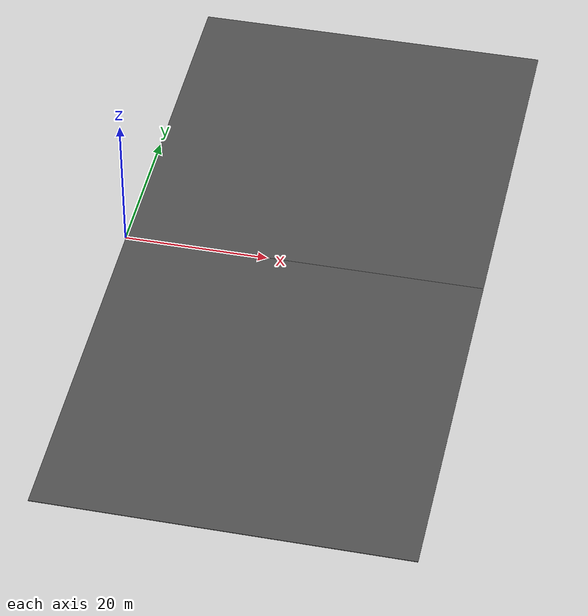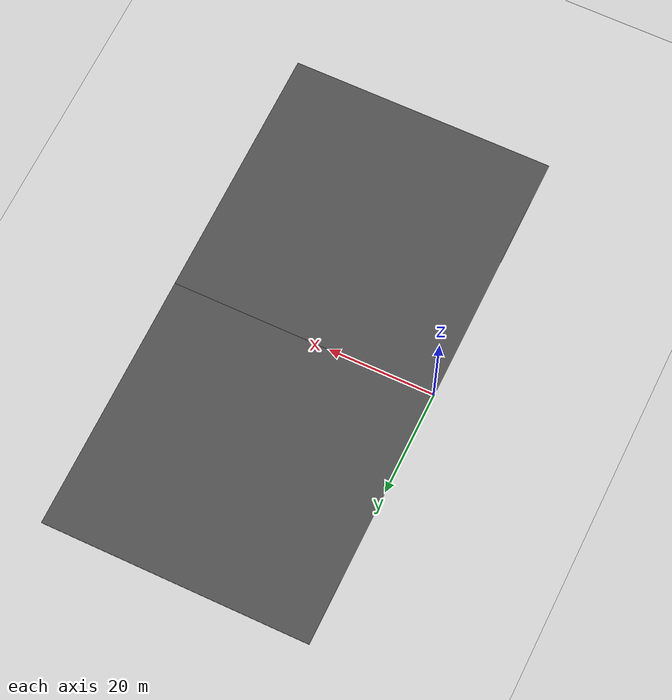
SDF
<sdf version="1.7">
 <world name="default">
  <model name="ground_plane">
   <static>1</static>
   <link name="link">
    <collision name="collision">
     <geometry><plane><normal>0 0 1</normal><size>100 100</size></plane></geometry>
     <surface>
      <contact><collide_bitmask>65535</collide_bitmask></contact>
      <friction><ode><mu>100</mu><mu2>50</mu2></ode></friction>
     </surface>
    </collision>
    <visual name="visual">
     <cast_shadows>0</cast_shadows>
     <geometry><plane><normal>0 0 1</normal><size>100 100</size></plane></geometry>
     <material>
      <script><uri>file://media/materials/scripts/gazebo.material</uri><name>Gazebo/Grey</name></script>
     </material>
    </visual>
   </link>
  </model>
  <model name="asphalt_plane">
   <link name="link">
    <inertial>
     <mass>1</mass>
     <inertia><ixx>1</ixx><ixy>0</ixy><ixz>0</ixz><iyy>1</iyy><iyz>0</iyz><izz>1</izz></inertia>
    </inertial>
    <visual name="visual">
     <cast_shadows>0</cast_shadows>
     <geometry><box><size>50 50 0.1</size></box></geometry>
     <material>
      <script>
       <uri>model://asphalt_plane/materials/scripts</uri>
       <uri>model://asphalt_plane/materials/textures</uri>
       <name>vrc/asphalt</name>
      </script>
      <shader type="pixel"><normal_map>__default__</normal_map></shader>
      <ambient>0.5 0.5 0.5 1</ambient>
      <diffuse>0.5 0.5 0.5 1</diffuse>
      <specular>0.2 0.2 0.2 1</specular>
      <emissive>0 0 0 1</emissive>
     </material>
    </visual>
    <collision name="collision">
     <geometry><box><size>50 50 0.1</size></box></geometry>
     <surface>
      <friction>
       <ode><mu>1</mu><mu2>1</mu2><fdir1>0 0 0</fdir1><slip1>0</slip1><slip2>0</slip2></ode>
       <torsional>
        <coefficient>1</coefficient>
        <patch_radius>0</patch_radius>
        <surface_radius>0</surface_radius>
        <use_patch_radius>1</use_patch_radius>
        <ode><slip>0</slip></ode>
       </torsional>
      </friction>
      <bounce><restitution_coefficient>0</restitution_coefficient><threshold>1e+06</threshold></bounce>
      <contact>
       <collide_without_contact>0</collide_without_contact>
       <collide_without_contact_bitmask>1</collide_without_contact_bitmask>
       <collide_bitmask>1</collide_bitmask>
       <ode>
        <soft_cfm>0</soft_cfm>
        <soft_erp>0.2</soft_erp>
        <kp>1e+13</kp>
        <kd>1</kd>
        <max_vel>0.01</max_vel>
        <min_depth>0</min_depth>
       </ode>
       <bullet>
        <split_impulse>1</split_impulse>
        <split_impulse_penetration_threshold>-0.01</split_impulse_penetration_threshold>
        <soft_cfm>0</soft_cfm>
        <soft_erp>0.2</soft_erp>
        <kp>1e+13</kp>
        <kd>1</kd>
       </bullet>
      </contact>
     </surface>
    </collision>
   </link>
   <static>1</static>
   <pose>25 25 0 0 -0 0</pose>
  </model>
  <model name="asphalt_plane_2">
   <link name="link">
    <inertial>
     <mass>1</mass>
     <inertia><ixx>1</ixx><ixy>0</ixy><ixz>0</ixz><iyy>1</iyy><iyz>0</iyz><izz>1</izz></inertia>
    </inertial>
    <visual name="visual">
     <cast_shadows>0</cast_shadows>
     <geometry><box><size>50 50 0.1</size></box></geometry>
     <material>
      <script>
       <uri>model://asphalt_plane/materials/scripts</uri>
       <uri>model://asphalt_plane/materials/textures</uri>
       <name>vrc/asphalt</name>
      </script>
      <shader type="pixel"><normal_map>__default__</normal_map></shader>
      <ambient>0.5 0.5 0.5 1</ambient>
      <diffuse>0.5 0.5 0.5 1</diffuse>
      <specular>0.2 0.2 0.2 1</specular>
      <emissive>0 0 0 1</emissive>
     </material>
    </visual>
    <collision name="collision">
     <geometry><box><size>50 50 0.1</size></box></geometry>
     <surface>
      <friction>
       <ode><mu>1</mu><mu2>1</mu2><fdir1>0 0 0</fdir1><slip1>0</slip1><slip2>0</slip2></ode>
       <torsional>
        <coefficient>1</coefficient>
        <patch_radius>0</patch_radius>
        <surface_radius>0</surface_radius>
        <use_patch_radius>1</use_patch_radius>
        <ode><slip>0</slip></ode>
       </torsional>
      </friction>
      <bounce><restitution_coefficient>0</restitution_coefficient><threshold>1e+06</threshold></bounce>
      <contact>
       <collide_without_contact>0</collide_without_contact>
       <collide_without_contact_bitmask>1</collide_without_contact_bitmask>
       <collide_bitmask>1</collide_bitmask>
       <ode>
        <soft_cfm>0</soft_cfm>
        <soft_erp>0.2</soft_erp>
        <kp>1e+13</kp>
        <kd>1</kd>
        <max_vel>0.01</max_vel>
        <min_depth>0</min_depth>
       </ode>
       <bullet>
        <split_impulse>1</split_impulse>
        <split_impulse_penetration_threshold>-0.01</split_impulse_penetration_threshold>
        <soft_cfm>0</soft_cfm>
        <soft_erp>0.2</soft_erp>
        <kp>1e+13</kp>
        <kd>1</kd>
       </bullet>
      </contact>
     </surface>
    </collision>
   </link>
   <static>1</static>
   <pose>25 -25 0 0 -0 0</pose>
  </model>
 </world>
</sdf>
